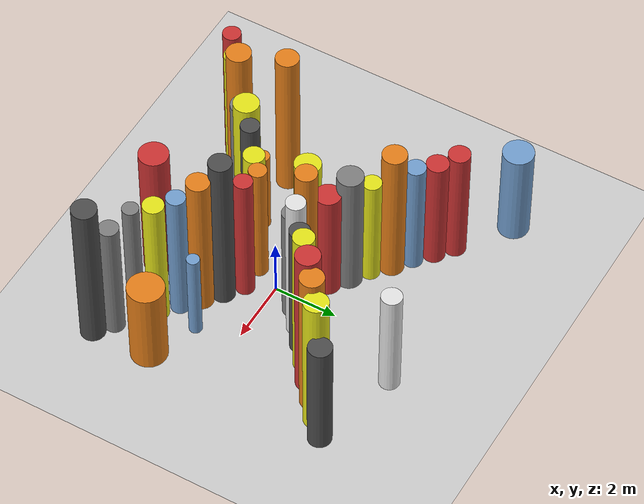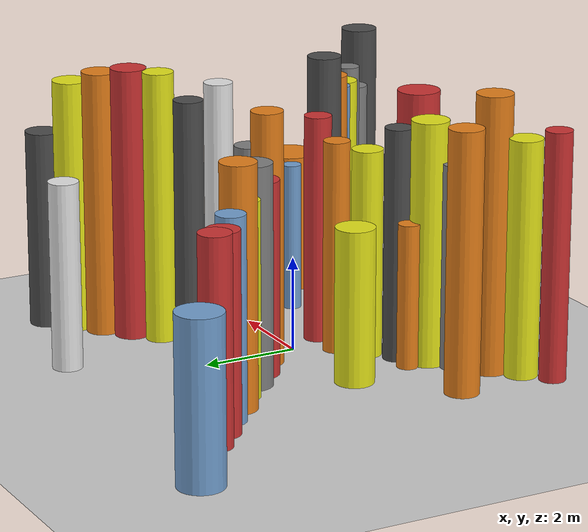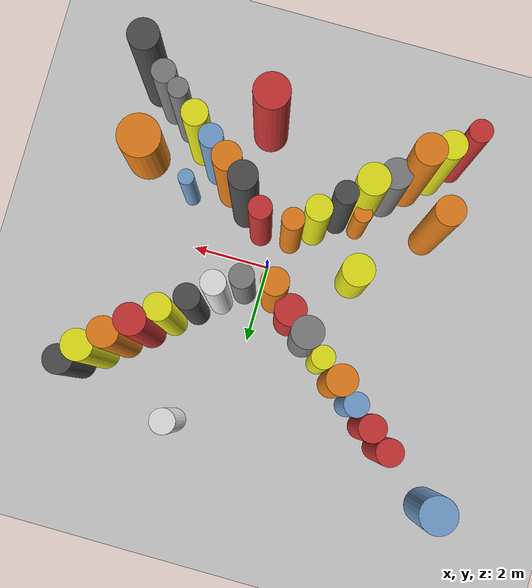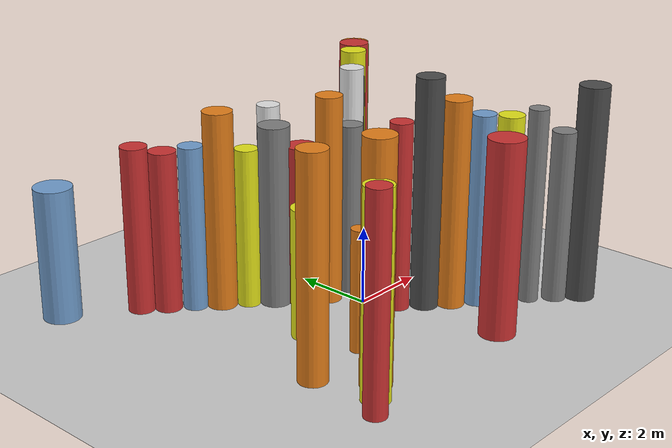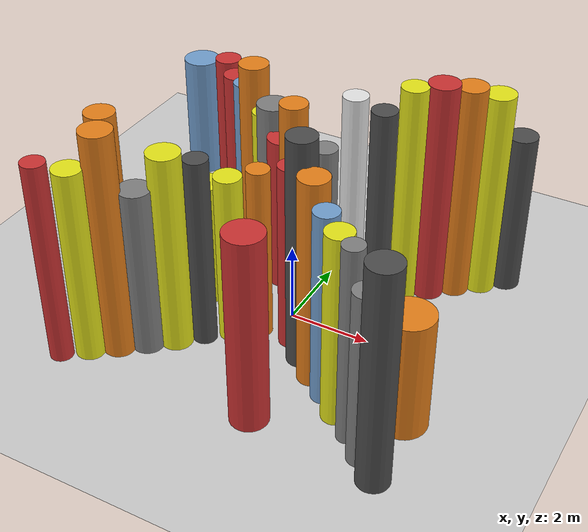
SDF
<?xml version='1.0'?>
<sdf version='1.6'>
  <world name='routeA_rl_v1__dense_recovery__rl_train__bottleneck_corridor__000062'>
    <!-- Sun light -->
    <light name='sun' type='directional'>
      <cast_shadows>1</cast_shadows>
      <pose>0 0 10 0 0 0</pose>
      <diffuse>0.8 0.8 0.8 1</diffuse>
      <specular>0.2 0.2 0.2 1</specular>
      <attenuation>
        <range>1000</range>
        <constant>0.9</constant>
        <linear>0.01</linear>
        <quadratic>0.001</quadratic>
      </attenuation>
      <direction>-0.5 0.1 -0.9</direction>
    </light>

    <!-- Ground plane -->
    <model name='ground_plane'>
      <static>1</static>
      <link name='link'>
        <collision name='collision'>
          <geometry>
            <plane>
              <normal>0 0 1</normal>
              <size>100 100</size>
            </plane>
          </geometry>
          <surface>
            <contact>
              <collide_bitmask>65535</collide_bitmask>
              <ode/>
            </contact>
            <friction>
              <ode>
                <mu>100</mu>
                <mu2>50</mu2>
              </ode>
              <torsional><ode/></torsional>
            </friction>
            <bounce/>
          </surface>
          <max_contacts>10</max_contacts>
        </collision>
        <visual name='visual'>
          <cast_shadows>0</cast_shadows>
          <geometry>
            <plane>
              <normal>0 0 1</normal>
              <size>100 100</size>
            </plane>
          </geometry>
          <material>
            <script>
              <uri>file://media/materials/scripts/gazebo.material</uri>
              <n>Gazebo/Grey</n>
            </script>
          </material>
        </visual>
      </link>
    </model>

    <!-- Environment -->
    <magnetic_field>6e-06 2.3e-05 -4.2e-05</magnetic_field>
    <atmosphere type='adiabatic'/>
    <physics name='default_physics' default='0' type='ode'>
      <gravity>0 0 -9.8</gravity>
      <max_step_size>0.004</max_step_size>
      <real_time_factor>1</real_time_factor>
      <real_time_update_rate>250</real_time_update_rate>
    </physics>
    <scene>
      <ambient>0.4 0.4 0.4 1</ambient>
      <background>0.7 0.7 0.7 1</background>
      <shadows>1</shadows>
    </scene>
    <wind/>
    <spherical_coordinates>
      <surface_model>EARTH_WGS84</surface_model>
      <latitude_deg>0</latitude_deg>
      <longitude_deg>0</longitude_deg>
      <elevation>0</elevation>
      <heading_deg>0</heading_deg>
    </spherical_coordinates>

    <!-- ============ OBSTACLES (40) ============ -->
    <model name='funnel_l_0'>
      <static>1</static>
      <link name='link'>
        <visual name='visual'>
          <geometry>
            <cylinder>
              <radius>0.2798</radius>
              <length>5.2288</length>
            </cylinder>
          </geometry>
          <material>
            <script>
              <n>Gazebo/Red</n>
              <uri>file://media/materials/scripts/gazebo.material</uri>
            </script>
            <ambient>0.8 0.2 0.2 1</ambient>
          </material>
        </visual>
        <collision name='collision'>
          <geometry>
            <cylinder>
              <radius>0.2798</radius>
              <length>5.2288</length>
            </cylinder>
          </geometry>
          <max_contacts>10</max_contacts>
          <surface>
            <contact><ode/></contact>
            <bounce/>
            <friction>
              <ode><mu>1</mu><mu2>1</mu2></ode>
              <torsional><ode/></torsional>
            </friction>
          </surface>
        </collision>
      </link>
      <pose>-4.0000 -3.8000 2.6144 0 0 0.0000</pose>
    </model>

    <model name='funnel_r_0'>
      <static>1</static>
      <link name='link'>
        <visual name='visual'>
          <geometry>
            <cylinder>
              <radius>0.3357</radius>
              <length>4.2747</length>
            </cylinder>
          </geometry>
          <material>
            <script>
              <n>Gazebo/Red</n>
              <uri>file://media/materials/scripts/gazebo.material</uri>
            </script>
            <ambient>0.8 0.2 0.2 1</ambient>
          </material>
        </visual>
        <collision name='collision'>
          <geometry>
            <cylinder>
              <radius>0.3357</radius>
              <length>4.2747</length>
            </cylinder>
          </geometry>
          <max_contacts>10</max_contacts>
          <surface>
            <contact><ode/></contact>
            <bounce/>
            <friction>
              <ode><mu>1</mu><mu2>1</mu2></ode>
              <torsional><ode/></torsional>
            </friction>
          </surface>
        </collision>
      </link>
      <pose>-4.0000 3.8000 2.1373 0 0 0.0000</pose>
    </model>

    <model name='funnel_l_1'>
      <static>1</static>
      <link name='link'>
        <visual name='visual'>
          <geometry>
            <cylinder>
              <radius>0.3500</radius>
              <length>4.9957</length>
            </cylinder>
          </geometry>
          <material>
            <script>
              <n>Gazebo/Yellow</n>
              <uri>file://media/materials/scripts/gazebo.material</uri>
            </script>
            <ambient>0.9 0.9 0.1 1</ambient>
          </material>
        </visual>
        <collision name='collision'>
          <geometry>
            <cylinder>
              <radius>0.3500</radius>
              <length>4.9957</length>
            </cylinder>
          </geometry>
          <max_contacts>10</max_contacts>
          <surface>
            <contact><ode/></contact>
            <bounce/>
            <friction>
              <ode><mu>1</mu><mu2>1</mu2></ode>
              <torsional><ode/></torsional>
            </friction>
          </surface>
        </collision>
      </link>
      <pose>-3.4857 -3.3714 2.4978 0 0 0.0000</pose>
    </model>

    <model name='funnel_r_1'>
      <static>1</static>
      <link name='link'>
        <visual name='visual'>
          <geometry>
            <cylinder>
              <radius>0.3436</radius>
              <length>4.1291</length>
            </cylinder>
          </geometry>
          <material>
            <script>
              <n>Gazebo/Red</n>
              <uri>file://media/materials/scripts/gazebo.material</uri>
            </script>
            <ambient>0.8 0.2 0.2 1</ambient>
          </material>
        </visual>
        <collision name='collision'>
          <geometry>
            <cylinder>
              <radius>0.3436</radius>
              <length>4.1291</length>
            </cylinder>
          </geometry>
          <max_contacts>10</max_contacts>
          <surface>
            <contact><ode/></contact>
            <bounce/>
            <friction>
              <ode><mu>1</mu><mu2>1</mu2></ode>
              <torsional><ode/></torsional>
            </friction>
          </surface>
        </collision>
      </link>
      <pose>-3.4857 3.3714 2.0645 0 0 0.0000</pose>
    </model>

    <model name='funnel_l_2'>
      <static>1</static>
      <link name='link'>
        <visual name='visual'>
          <geometry>
            <cylinder>
              <radius>0.3810</radius>
              <length>5.8471</length>
            </cylinder>
          </geometry>
          <material>
            <script>
              <n>Gazebo/Orange</n>
              <uri>file://media/materials/scripts/gazebo.material</uri>
            </script>
            <ambient>0.9 0.5 0.1 1</ambient>
          </material>
        </visual>
        <collision name='collision'>
          <geometry>
            <cylinder>
              <radius>0.3810</radius>
              <length>5.8471</length>
            </cylinder>
          </geometry>
          <max_contacts>10</max_contacts>
          <surface>
            <contact><ode/></contact>
            <bounce/>
            <friction>
              <ode><mu>1</mu><mu2>1</mu2></ode>
              <torsional><ode/></torsional>
            </friction>
          </surface>
        </collision>
      </link>
      <pose>-2.9714 -2.9429 2.9236 0 0 0.0000</pose>
    </model>

    <model name='funnel_r_2'>
      <static>1</static>
      <link name='link'>
        <visual name='visual'>
          <geometry>
            <cylinder>
              <radius>0.3063</radius>
              <length>4.2278</length>
            </cylinder>
          </geometry>
          <material>
            <script>
              <n>Gazebo/Blue</n>
              <uri>file://media/materials/scripts/gazebo.material</uri>
            </script>
            <ambient>0.447 0.624 0.812 1</ambient>
          </material>
        </visual>
        <collision name='collision'>
          <geometry>
            <cylinder>
              <radius>0.3063</radius>
              <length>4.2278</length>
            </cylinder>
          </geometry>
          <max_contacts>10</max_contacts>
          <surface>
            <contact><ode/></contact>
            <bounce/>
            <friction>
              <ode><mu>1</mu><mu2>1</mu2></ode>
              <torsional><ode/></torsional>
            </friction>
          </surface>
        </collision>
      </link>
      <pose>-2.9714 2.9429 2.1139 0 0 0.0000</pose>
    </model>

    <model name='funnel_l_3'>
      <static>1</static>
      <link name='link'>
        <visual name='visual'>
          <geometry>
            <cylinder>
              <radius>0.3849</radius>
              <length>4.3260</length>
            </cylinder>
          </geometry>
          <material>
            <script>
              <n>Gazebo/Grey</n>
              <uri>file://media/materials/scripts/gazebo.material</uri>
            </script>
            <ambient>0.5 0.5 0.5 1</ambient>
          </material>
        </visual>
        <collision name='collision'>
          <geometry>
            <cylinder>
              <radius>0.3849</radius>
              <length>4.3260</length>
            </cylinder>
          </geometry>
          <max_contacts>10</max_contacts>
          <surface>
            <contact><ode/></contact>
            <bounce/>
            <friction>
              <ode><mu>1</mu><mu2>1</mu2></ode>
              <torsional><ode/></torsional>
            </friction>
          </surface>
        </collision>
      </link>
      <pose>-2.4571 -2.5143 2.1630 0 0 0.0000</pose>
    </model>

    <model name='funnel_r_3'>
      <static>1</static>
      <link name='link'>
        <visual name='visual'>
          <geometry>
            <cylinder>
              <radius>0.3767</radius>
              <length>5.0670</length>
            </cylinder>
          </geometry>
          <material>
            <script>
              <n>Gazebo/Orange</n>
              <uri>file://media/materials/scripts/gazebo.material</uri>
            </script>
            <ambient>0.9 0.5 0.1 1</ambient>
          </material>
        </visual>
        <collision name='collision'>
          <geometry>
            <cylinder>
              <radius>0.3767</radius>
              <length>5.0670</length>
            </cylinder>
          </geometry>
          <max_contacts>10</max_contacts>
          <surface>
            <contact><ode/></contact>
            <bounce/>
            <friction>
              <ode><mu>1</mu><mu2>1</mu2></ode>
              <torsional><ode/></torsional>
            </friction>
          </surface>
        </collision>
      </link>
      <pose>-2.4571 2.5143 2.5335 0 0 0.0000</pose>
    </model>

    <model name='funnel_l_4'>
      <static>1</static>
      <link name='link'>
        <visual name='visual'>
          <geometry>
            <cylinder>
              <radius>0.3918</radius>
              <length>5.1613</length>
            </cylinder>
          </geometry>
          <material>
            <script>
              <n>Gazebo/Yellow</n>
              <uri>file://media/materials/scripts/gazebo.material</uri>
            </script>
            <ambient>0.9 0.9 0.1 1</ambient>
          </material>
        </visual>
        <collision name='collision'>
          <geometry>
            <cylinder>
              <radius>0.3918</radius>
              <length>5.1613</length>
            </cylinder>
          </geometry>
          <max_contacts>10</max_contacts>
          <surface>
            <contact><ode/></contact>
            <bounce/>
            <friction>
              <ode><mu>1</mu><mu2>1</mu2></ode>
              <torsional><ode/></torsional>
            </friction>
          </surface>
        </collision>
      </link>
      <pose>-1.9429 -2.0857 2.5807 0 0 0.0000</pose>
    </model>

    <model name='funnel_r_4'>
      <static>1</static>
      <link name='link'>
        <visual name='visual'>
          <geometry>
            <cylinder>
              <radius>0.2908</radius>
              <length>4.1005</length>
            </cylinder>
          </geometry>
          <material>
            <script>
              <n>Gazebo/Yellow</n>
              <uri>file://media/materials/scripts/gazebo.material</uri>
            </script>
            <ambient>0.9 0.9 0.1 1</ambient>
          </material>
        </visual>
        <collision name='collision'>
          <geometry>
            <cylinder>
              <radius>0.2908</radius>
              <length>4.1005</length>
            </cylinder>
          </geometry>
          <max_contacts>10</max_contacts>
          <surface>
            <contact><ode/></contact>
            <bounce/>
            <friction>
              <ode><mu>1</mu><mu2>1</mu2></ode>
              <torsional><ode/></torsional>
            </friction>
          </surface>
        </collision>
      </link>
      <pose>-1.9429 2.0857 2.0503 0 0 0.0000</pose>
    </model>

    <model name='funnel_l_5'>
      <static>1</static>
      <link name='link'>
        <visual name='visual'>
          <geometry>
            <cylinder>
              <radius>0.2907</radius>
              <length>4.9320</length>
            </cylinder>
          </geometry>
          <material>
            <script>
              <n>Gazebo/DarkGrey</n>
              <uri>file://media/materials/scripts/gazebo.material</uri>
            </script>
            <ambient>0.3 0.3 0.3 1</ambient>
          </material>
        </visual>
        <collision name='collision'>
          <geometry>
            <cylinder>
              <radius>0.2907</radius>
              <length>4.9320</length>
            </cylinder>
          </geometry>
          <max_contacts>10</max_contacts>
          <surface>
            <contact><ode/></contact>
            <bounce/>
            <friction>
              <ode><mu>1</mu><mu2>1</mu2></ode>
              <torsional><ode/></torsional>
            </friction>
          </surface>
        </collision>
      </link>
      <pose>-1.4286 -1.6571 2.4660 0 0 0.0000</pose>
    </model>

    <model name='funnel_r_5'>
      <static>1</static>
      <link name='link'>
        <visual name='visual'>
          <geometry>
            <cylinder>
              <radius>0.3987</radius>
              <length>4.6594</length>
            </cylinder>
          </geometry>
          <material>
            <script>
              <n>Gazebo/Grey</n>
              <uri>file://media/materials/scripts/gazebo.material</uri>
            </script>
            <ambient>0.5 0.5 0.5 1</ambient>
          </material>
        </visual>
        <collision name='collision'>
          <geometry>
            <cylinder>
              <radius>0.3987</radius>
              <length>4.6594</length>
            </cylinder>
          </geometry>
          <max_contacts>10</max_contacts>
          <surface>
            <contact><ode/></contact>
            <bounce/>
            <friction>
              <ode><mu>1</mu><mu2>1</mu2></ode>
              <torsional><ode/></torsional>
            </friction>
          </surface>
        </collision>
      </link>
      <pose>-1.4286 1.6571 2.3297 0 0 0.0000</pose>
    </model>

    <model name='funnel_l_6'>
      <static>1</static>
      <link name='link'>
        <visual name='visual'>
          <geometry>
            <cylinder>
              <radius>0.3271</radius>
              <length>4.4102</length>
            </cylinder>
          </geometry>
          <material>
            <script>
              <n>Gazebo/Yellow</n>
              <uri>file://media/materials/scripts/gazebo.material</uri>
            </script>
            <ambient>0.9 0.9 0.1 1</ambient>
          </material>
        </visual>
        <collision name='collision'>
          <geometry>
            <cylinder>
              <radius>0.3271</radius>
              <length>4.4102</length>
            </cylinder>
          </geometry>
          <max_contacts>10</max_contacts>
          <surface>
            <contact><ode/></contact>
            <bounce/>
            <friction>
              <ode><mu>1</mu><mu2>1</mu2></ode>
              <torsional><ode/></torsional>
            </friction>
          </surface>
        </collision>
      </link>
      <pose>-0.9143 -1.2286 2.2051 0 0 0.0000</pose>
    </model>

    <model name='funnel_r_6'>
      <static>1</static>
      <link name='link'>
        <visual name='visual'>
          <geometry>
            <cylinder>
              <radius>0.3929</radius>
              <length>4.1151</length>
            </cylinder>
          </geometry>
          <material>
            <script>
              <n>Gazebo/Red</n>
              <uri>file://media/materials/scripts/gazebo.material</uri>
            </script>
            <ambient>0.8 0.2 0.2 1</ambient>
          </material>
        </visual>
        <collision name='collision'>
          <geometry>
            <cylinder>
              <radius>0.3929</radius>
              <length>4.1151</length>
            </cylinder>
          </geometry>
          <max_contacts>10</max_contacts>
          <surface>
            <contact><ode/></contact>
            <bounce/>
            <friction>
              <ode><mu>1</mu><mu2>1</mu2></ode>
              <torsional><ode/></torsional>
            </friction>
          </surface>
        </collision>
      </link>
      <pose>-0.9143 1.2286 2.0575 0 0 0.0000</pose>
    </model>

    <model name='funnel_l_7'>
      <static>1</static>
      <link name='link'>
        <visual name='visual'>
          <geometry>
            <cylinder>
              <radius>0.2762</radius>
              <length>4.5132</length>
            </cylinder>
          </geometry>
          <material>
            <script>
              <n>Gazebo/Orange</n>
              <uri>file://media/materials/scripts/gazebo.material</uri>
            </script>
            <ambient>0.9 0.5 0.1 1</ambient>
          </material>
        </visual>
        <collision name='collision'>
          <geometry>
            <cylinder>
              <radius>0.2762</radius>
              <length>4.5132</length>
            </cylinder>
          </geometry>
          <max_contacts>10</max_contacts>
          <surface>
            <contact><ode/></contact>
            <bounce/>
            <friction>
              <ode><mu>1</mu><mu2>1</mu2></ode>
              <torsional><ode/></torsional>
            </friction>
          </surface>
        </collision>
      </link>
      <pose>-0.4000 -0.8000 2.2566 0 0 0.0000</pose>
    </model>

    <model name='funnel_r_7'>
      <static>1</static>
      <link name='link'>
        <visual name='visual'>
          <geometry>
            <cylinder>
              <radius>0.3357</radius>
              <length>5.3493</length>
            </cylinder>
          </geometry>
          <material>
            <script>
              <n>Gazebo/Orange</n>
              <uri>file://media/materials/scripts/gazebo.material</uri>
            </script>
            <ambient>0.9 0.5 0.1 1</ambient>
          </material>
        </visual>
        <collision name='collision'>
          <geometry>
            <cylinder>
              <radius>0.3357</radius>
              <length>5.3493</length>
            </cylinder>
          </geometry>
          <max_contacts>10</max_contacts>
          <surface>
            <contact><ode/></contact>
            <bounce/>
            <friction>
              <ode><mu>1</mu><mu2>1</mu2></ode>
              <torsional><ode/></torsional>
            </friction>
          </surface>
        </collision>
      </link>
      <pose>-0.4000 0.8000 2.6746 0 0 0.0000</pose>
    </model>

    <model name='funnel_out_l_0'>
      <static>1</static>
      <link name='link'>
        <visual name='visual'>
          <geometry>
            <cylinder>
              <radius>0.2874</radius>
              <length>4.8460</length>
            </cylinder>
          </geometry>
          <material>
            <script>
              <n>Gazebo/Red</n>
              <uri>file://media/materials/scripts/gazebo.material</uri>
            </script>
            <ambient>0.8 0.2 0.2 1</ambient>
          </material>
        </visual>
        <collision name='collision'>
          <geometry>
            <cylinder>
              <radius>0.2874</radius>
              <length>4.8460</length>
            </cylinder>
          </geometry>
          <max_contacts>10</max_contacts>
          <surface>
            <contact><ode/></contact>
            <bounce/>
            <friction>
              <ode><mu>1</mu><mu2>1</mu2></ode>
              <torsional><ode/></torsional>
            </friction>
          </surface>
        </collision>
      </link>
      <pose>0.4000 -0.8000 2.4230 0 0 0.0000</pose>
    </model>

    <model name='funnel_out_r_0'>
      <static>1</static>
      <link name='link'>
        <visual name='visual'>
          <geometry>
            <cylinder>
              <radius>0.3054</radius>
              <length>4.4293</length>
            </cylinder>
          </geometry>
          <material>
            <script>
              <n>Gazebo/Grey</n>
              <uri>file://media/materials/scripts/gazebo.material</uri>
            </script>
            <ambient>0.5 0.5 0.5 1</ambient>
          </material>
        </visual>
        <collision name='collision'>
          <geometry>
            <cylinder>
              <radius>0.3054</radius>
              <length>4.4293</length>
            </cylinder>
          </geometry>
          <max_contacts>10</max_contacts>
          <surface>
            <contact><ode/></contact>
            <bounce/>
            <friction>
              <ode><mu>1</mu><mu2>1</mu2></ode>
              <torsional><ode/></torsional>
            </friction>
          </surface>
        </collision>
      </link>
      <pose>0.4000 0.8000 2.2147 0 0 0.0000</pose>
    </model>

    <model name='funnel_out_l_1'>
      <static>1</static>
      <link name='link'>
        <visual name='visual'>
          <geometry>
            <cylinder>
              <radius>0.3516</radius>
              <length>5.9338</length>
            </cylinder>
          </geometry>
          <material>
            <script>
              <n>Gazebo/DarkGrey</n>
              <uri>file://media/materials/scripts/gazebo.material</uri>
            </script>
            <ambient>0.3 0.3 0.3 1</ambient>
          </material>
        </visual>
        <collision name='collision'>
          <geometry>
            <cylinder>
              <radius>0.3516</radius>
              <length>5.9338</length>
            </cylinder>
          </geometry>
          <max_contacts>10</max_contacts>
          <surface>
            <contact><ode/></contact>
            <bounce/>
            <friction>
              <ode><mu>1</mu><mu2>1</mu2></ode>
              <torsional><ode/></torsional>
            </friction>
          </surface>
        </collision>
      </link>
      <pose>0.9143 -1.2286 2.9669 0 0 0.0000</pose>
    </model>

    <model name='funnel_out_r_1'>
      <static>1</static>
      <link name='link'>
        <visual name='visual'>
          <geometry>
            <cylinder>
              <radius>0.2983</radius>
              <length>5.6827</length>
            </cylinder>
          </geometry>
          <material>
            <script>
              <n>Gazebo/White</n>
              <uri>file://media/materials/scripts/gazebo.material</uri>
            </script>
            <ambient>0.9 0.9 0.9 1</ambient>
          </material>
        </visual>
        <collision name='collision'>
          <geometry>
            <cylinder>
              <radius>0.2983</radius>
              <length>5.6827</length>
            </cylinder>
          </geometry>
          <max_contacts>10</max_contacts>
          <surface>
            <contact><ode/></contact>
            <bounce/>
            <friction>
              <ode><mu>1</mu><mu2>1</mu2></ode>
              <torsional><ode/></torsional>
            </friction>
          </surface>
        </collision>
      </link>
      <pose>0.9143 1.2286 2.8413 0 0 0.0000</pose>
    </model>

    <model name='funnel_out_l_2'>
      <static>1</static>
      <link name='link'>
        <visual name='visual'>
          <geometry>
            <cylinder>
              <radius>0.3563</radius>
              <length>5.3598</length>
            </cylinder>
          </geometry>
          <material>
            <script>
              <n>Gazebo/Orange</n>
              <uri>file://media/materials/scripts/gazebo.material</uri>
            </script>
            <ambient>0.9 0.5 0.1 1</ambient>
          </material>
        </visual>
        <collision name='collision'>
          <geometry>
            <cylinder>
              <radius>0.3563</radius>
              <length>5.3598</length>
            </cylinder>
          </geometry>
          <max_contacts>10</max_contacts>
          <surface>
            <contact><ode/></contact>
            <bounce/>
            <friction>
              <ode><mu>1</mu><mu2>1</mu2></ode>
              <torsional><ode/></torsional>
            </friction>
          </surface>
        </collision>
      </link>
      <pose>1.4286 -1.6571 2.6799 0 0 0.0000</pose>
    </model>

    <model name='funnel_out_r_2'>
      <static>1</static>
      <link name='link'>
        <visual name='visual'>
          <geometry>
            <cylinder>
              <radius>0.3121</radius>
              <length>5.2444</length>
            </cylinder>
          </geometry>
          <material>
            <script>
              <n>Gazebo/DarkGrey</n>
              <uri>file://media/materials/scripts/gazebo.material</uri>
            </script>
            <ambient>0.3 0.3 0.3 1</ambient>
          </material>
        </visual>
        <collision name='collision'>
          <geometry>
            <cylinder>
              <radius>0.3121</radius>
              <length>5.2444</length>
            </cylinder>
          </geometry>
          <max_contacts>10</max_contacts>
          <surface>
            <contact><ode/></contact>
            <bounce/>
            <friction>
              <ode><mu>1</mu><mu2>1</mu2></ode>
              <torsional><ode/></torsional>
            </friction>
          </surface>
        </collision>
      </link>
      <pose>1.4286 1.6571 2.6222 0 0 0.0000</pose>
    </model>

    <model name='funnel_out_l_3'>
      <static>1</static>
      <link name='link'>
        <visual name='visual'>
          <geometry>
            <cylinder>
              <radius>0.2953</radius>
              <length>4.9542</length>
            </cylinder>
          </geometry>
          <material>
            <script>
              <n>Gazebo/Blue</n>
              <uri>file://media/materials/scripts/gazebo.material</uri>
            </script>
            <ambient>0.447 0.624 0.812 1</ambient>
          </material>
        </visual>
        <collision name='collision'>
          <geometry>
            <cylinder>
              <radius>0.2953</radius>
              <length>4.9542</length>
            </cylinder>
          </geometry>
          <max_contacts>10</max_contacts>
          <surface>
            <contact><ode/></contact>
            <bounce/>
            <friction>
              <ode><mu>1</mu><mu2>1</mu2></ode>
              <torsional><ode/></torsional>
            </friction>
          </surface>
        </collision>
      </link>
      <pose>1.9429 -2.0857 2.4771 0 0 0.0000</pose>
    </model>

    <model name='funnel_out_r_3'>
      <static>1</static>
      <link name='link'>
        <visual name='visual'>
          <geometry>
            <cylinder>
              <radius>0.3253</radius>
              <length>5.7741</length>
            </cylinder>
          </geometry>
          <material>
            <script>
              <n>Gazebo/Yellow</n>
              <uri>file://media/materials/scripts/gazebo.material</uri>
            </script>
            <ambient>0.9 0.9 0.1 1</ambient>
          </material>
        </visual>
        <collision name='collision'>
          <geometry>
            <cylinder>
              <radius>0.3253</radius>
              <length>5.7741</length>
            </cylinder>
          </geometry>
          <max_contacts>10</max_contacts>
          <surface>
            <contact><ode/></contact>
            <bounce/>
            <friction>
              <ode><mu>1</mu><mu2>1</mu2></ode>
              <torsional><ode/></torsional>
            </friction>
          </surface>
        </collision>
      </link>
      <pose>1.9429 2.0857 2.8871 0 0 0.0000</pose>
    </model>

    <model name='funnel_out_l_4'>
      <static>1</static>
      <link name='link'>
        <visual name='visual'>
          <geometry>
            <cylinder>
              <radius>0.3244</radius>
              <length>4.8987</length>
            </cylinder>
          </geometry>
          <material>
            <script>
              <n>Gazebo/Yellow</n>
              <uri>file://media/materials/scripts/gazebo.material</uri>
            </script>
            <ambient>0.9 0.9 0.1 1</ambient>
          </material>
        </visual>
        <collision name='collision'>
          <geometry>
            <cylinder>
              <radius>0.3244</radius>
              <length>4.8987</length>
            </cylinder>
          </geometry>
          <max_contacts>10</max_contacts>
          <surface>
            <contact><ode/></contact>
            <bounce/>
            <friction>
              <ode><mu>1</mu><mu2>1</mu2></ode>
              <torsional><ode/></torsional>
            </friction>
          </surface>
        </collision>
      </link>
      <pose>2.4571 -2.5143 2.4493 0 0 0.0000</pose>
    </model>

    <model name='funnel_out_r_4'>
      <static>1</static>
      <link name='link'>
        <visual name='visual'>
          <geometry>
            <cylinder>
              <radius>0.3760</radius>
              <length>5.7917</length>
            </cylinder>
          </geometry>
          <material>
            <script>
              <n>Gazebo/Red</n>
              <uri>file://media/materials/scripts/gazebo.material</uri>
            </script>
            <ambient>0.8 0.2 0.2 1</ambient>
          </material>
        </visual>
        <collision name='collision'>
          <geometry>
            <cylinder>
              <radius>0.3760</radius>
              <length>5.7917</length>
            </cylinder>
          </geometry>
          <max_contacts>10</max_contacts>
          <surface>
            <contact><ode/></contact>
            <bounce/>
            <friction>
              <ode><mu>1</mu><mu2>1</mu2></ode>
              <torsional><ode/></torsional>
            </friction>
          </surface>
        </collision>
      </link>
      <pose>2.4571 2.5143 2.8958 0 0 0.0000</pose>
    </model>

    <model name='funnel_out_l_5'>
      <static>1</static>
      <link name='link'>
        <visual name='visual'>
          <geometry>
            <cylinder>
              <radius>0.2509</radius>
              <length>5.0341</length>
            </cylinder>
          </geometry>
          <material>
            <script>
              <n>Gazebo/Grey</n>
              <uri>file://media/materials/scripts/gazebo.material</uri>
            </script>
            <ambient>0.5 0.5 0.5 1</ambient>
          </material>
        </visual>
        <collision name='collision'>
          <geometry>
            <cylinder>
              <radius>0.2509</radius>
              <length>5.0341</length>
            </cylinder>
          </geometry>
          <max_contacts>10</max_contacts>
          <surface>
            <contact><ode/></contact>
            <bounce/>
            <friction>
              <ode><mu>1</mu><mu2>1</mu2></ode>
              <torsional><ode/></torsional>
            </friction>
          </surface>
        </collision>
      </link>
      <pose>2.9714 -2.9429 2.5170 0 0 0.0000</pose>
    </model>

    <model name='funnel_out_r_5'>
      <static>1</static>
      <link name='link'>
        <visual name='visual'>
          <geometry>
            <cylinder>
              <radius>0.3650</radius>
              <length>5.6490</length>
            </cylinder>
          </geometry>
          <material>
            <script>
              <n>Gazebo/Orange</n>
              <uri>file://media/materials/scripts/gazebo.material</uri>
            </script>
            <ambient>0.9 0.5 0.1 1</ambient>
          </material>
        </visual>
        <collision name='collision'>
          <geometry>
            <cylinder>
              <radius>0.3650</radius>
              <length>5.6490</length>
            </cylinder>
          </geometry>
          <max_contacts>10</max_contacts>
          <surface>
            <contact><ode/></contact>
            <bounce/>
            <friction>
              <ode><mu>1</mu><mu2>1</mu2></ode>
              <torsional><ode/></torsional>
            </friction>
          </surface>
        </collision>
      </link>
      <pose>2.9714 2.9429 2.8245 0 0 0.0000</pose>
    </model>

    <model name='funnel_out_l_6'>
      <static>1</static>
      <link name='link'>
        <visual name='visual'>
          <geometry>
            <cylinder>
              <radius>0.3036</radius>
              <length>4.4390</length>
            </cylinder>
          </geometry>
          <material>
            <script>
              <n>Gazebo/Grey</n>
              <uri>file://media/materials/scripts/gazebo.material</uri>
            </script>
            <ambient>0.5 0.5 0.5 1</ambient>
          </material>
        </visual>
        <collision name='collision'>
          <geometry>
            <cylinder>
              <radius>0.3036</radius>
              <length>4.4390</length>
            </cylinder>
          </geometry>
          <max_contacts>10</max_contacts>
          <surface>
            <contact><ode/></contact>
            <bounce/>
            <friction>
              <ode><mu>1</mu><mu2>1</mu2></ode>
              <torsional><ode/></torsional>
            </friction>
          </surface>
        </collision>
      </link>
      <pose>3.4857 -3.3714 2.2195 0 0 0.0000</pose>
    </model>

    <model name='funnel_out_r_6'>
      <static>1</static>
      <link name='link'>
        <visual name='visual'>
          <geometry>
            <cylinder>
              <radius>0.3749</radius>
              <length>5.3967</length>
            </cylinder>
          </geometry>
          <material>
            <script>
              <n>Gazebo/Yellow</n>
              <uri>file://media/materials/scripts/gazebo.material</uri>
            </script>
            <ambient>0.9 0.9 0.1 1</ambient>
          </material>
        </visual>
        <collision name='collision'>
          <geometry>
            <cylinder>
              <radius>0.3749</radius>
              <length>5.3967</length>
            </cylinder>
          </geometry>
          <max_contacts>10</max_contacts>
          <surface>
            <contact><ode/></contact>
            <bounce/>
            <friction>
              <ode><mu>1</mu><mu2>1</mu2></ode>
              <torsional><ode/></torsional>
            </friction>
          </surface>
        </collision>
      </link>
      <pose>3.4857 3.3714 2.6983 0 0 0.0000</pose>
    </model>

    <model name='funnel_out_l_7'>
      <static>1</static>
      <link name='link'>
        <visual name='visual'>
          <geometry>
            <cylinder>
              <radius>0.3830</radius>
              <length>5.5587</length>
            </cylinder>
          </geometry>
          <material>
            <script>
              <n>Gazebo/DarkGrey</n>
              <uri>file://media/materials/scripts/gazebo.material</uri>
            </script>
            <ambient>0.3 0.3 0.3 1</ambient>
          </material>
        </visual>
        <collision name='collision'>
          <geometry>
            <cylinder>
              <radius>0.3830</radius>
              <length>5.5587</length>
            </cylinder>
          </geometry>
          <max_contacts>10</max_contacts>
          <surface>
            <contact><ode/></contact>
            <bounce/>
            <friction>
              <ode><mu>1</mu><mu2>1</mu2></ode>
              <torsional><ode/></torsional>
            </friction>
          </surface>
        </collision>
      </link>
      <pose>4.0000 -3.8000 2.7794 0 0 0.0000</pose>
    </model>

    <model name='funnel_out_r_7'>
      <static>1</static>
      <link name='link'>
        <visual name='visual'>
          <geometry>
            <cylinder>
              <radius>0.3614</radius>
              <length>4.2324</length>
            </cylinder>
          </geometry>
          <material>
            <script>
              <n>Gazebo/DarkGrey</n>
              <uri>file://media/materials/scripts/gazebo.material</uri>
            </script>
            <ambient>0.3 0.3 0.3 1</ambient>
          </material>
        </visual>
        <collision name='collision'>
          <geometry>
            <cylinder>
              <radius>0.3614</radius>
              <length>4.2324</length>
            </cylinder>
          </geometry>
          <max_contacts>10</max_contacts>
          <surface>
            <contact><ode/></contact>
            <bounce/>
            <friction>
              <ode><mu>1</mu><mu2>1</mu2></ode>
              <torsional><ode/></torsional>
            </friction>
          </surface>
        </collision>
      </link>
      <pose>4.0000 3.8000 2.1162 0 0 0.0000</pose>
    </model>

    <model name='bn_scatter_0'>
      <static>1</static>
      <link name='link'>
        <visual name='visual'>
          <geometry>
            <cylinder>
              <radius>0.4129</radius>
              <length>3.2743</length>
            </cylinder>
          </geometry>
          <material>
            <script>
              <n>Gazebo/Yellow</n>
              <uri>file://media/materials/scripts/gazebo.material</uri>
            </script>
            <ambient>0.9 0.9 0.1 1</ambient>
          </material>
        </visual>
        <collision name='collision'>
          <geometry>
            <cylinder>
              <radius>0.4129</radius>
              <length>3.2743</length>
            </cylinder>
          </geometry>
          <max_contacts>10</max_contacts>
          <surface>
            <contact><ode/></contact>
            <bounce/>
            <friction>
              <ode><mu>1</mu><mu2>1</mu2></ode>
              <torsional><ode/></torsional>
            </friction>
          </surface>
        </collision>
      </link>
      <pose>-2.2293 -0.2109 1.6372 0 0 0.0000</pose>
    </model>

    <model name='bn_scatter_1'>
      <static>1</static>
      <link name='link'>
        <visual name='visual'>
          <geometry>
            <cylinder>
              <radius>0.2007</radius>
              <length>3.2046</length>
            </cylinder>
          </geometry>
          <material>
            <script>
              <n>Gazebo/Blue</n>
              <uri>file://media/materials/scripts/gazebo.material</uri>
            </script>
            <ambient>0.447 0.624 0.812 1</ambient>
          </material>
        </visual>
        <collision name='collision'>
          <geometry>
            <cylinder>
              <radius>0.2007</radius>
              <length>3.2046</length>
            </cylinder>
          </geometry>
          <max_contacts>10</max_contacts>
          <surface>
            <contact><ode/></contact>
            <bounce/>
            <friction>
              <ode><mu>1</mu><mu2>1</mu2></ode>
              <torsional><ode/></torsional>
            </friction>
          </surface>
        </collision>
      </link>
      <pose>2.4183 -1.2777 1.6023 0 0 0.0000</pose>
    </model>

    <model name='bn_scatter_2'>
      <static>1</static>
      <link name='link'>
        <visual name='visual'>
          <geometry>
            <cylinder>
              <radius>0.3613</radius>
              <length>5.4853</length>
            </cylinder>
          </geometry>
          <material>
            <script>
              <n>Gazebo/Orange</n>
              <uri>file://media/materials/scripts/gazebo.material</uri>
            </script>
            <ambient>0.9 0.5 0.1 1</ambient>
          </material>
        </visual>
        <collision name='collision'>
          <geometry>
            <cylinder>
              <radius>0.3613</radius>
              <length>5.4853</length>
            </cylinder>
          </geometry>
          <max_contacts>10</max_contacts>
          <surface>
            <contact><ode/></contact>
            <bounce/>
            <friction>
              <ode><mu>1</mu><mu2>1</mu2></ode>
              <torsional><ode/></torsional>
            </friction>
          </surface>
        </collision>
      </link>
      <pose>-3.7788 -1.7938 2.7426 0 0 0.0000</pose>
    </model>

    <model name='bn_scatter_3'>
      <static>1</static>
      <link name='link'>
        <visual name='visual'>
          <geometry>
            <cylinder>
              <radius>0.4793</radius>
              <length>3.4072</length>
            </cylinder>
          </geometry>
          <material>
            <script>
              <n>Gazebo/Blue</n>
              <uri>file://media/materials/scripts/gazebo.material</uri>
            </script>
            <ambient>0.447 0.624 0.812 1</ambient>
          </material>
        </visual>
        <collision name='collision'>
          <geometry>
            <cylinder>
              <radius>0.4793</radius>
              <length>3.4072</length>
            </cylinder>
          </geometry>
          <max_contacts>10</max_contacts>
          <surface>
            <contact><ode/></contact>
            <bounce/>
            <friction>
              <ode><mu>1</mu><mu2>1</mu2></ode>
              <torsional><ode/></torsional>
            </friction>
          </surface>
        </collision>
      </link>
      <pose>-5.5838 4.9183 1.7036 0 0 0.0000</pose>
    </model>

    <model name='bn_scatter_4'>
      <static>1</static>
      <link name='link'>
        <visual name='visual'>
          <geometry>
            <cylinder>
              <radius>0.2258</radius>
              <length>3.0637</length>
            </cylinder>
          </geometry>
          <material>
            <script>
              <n>Gazebo/Orange</n>
              <uri>file://media/materials/scripts/gazebo.material</uri>
            </script>
            <ambient>0.9 0.5 0.1 1</ambient>
          </material>
        </visual>
        <collision name='collision'>
          <geometry>
            <cylinder>
              <radius>0.2258</radius>
              <length>3.0637</length>
            </cylinder>
          </geometry>
          <max_contacts>10</max_contacts>
          <surface>
            <contact><ode/></contact>
            <bounce/>
            <friction>
              <ode><mu>1</mu><mu2>1</mu2></ode>
              <torsional><ode/></torsional>
            </friction>
          </surface>
        </collision>
      </link>
      <pose>-1.9790 -1.5950 1.5318 0 0 0.0000</pose>
    </model>

    <model name='bn_scatter_5'>
      <static>1</static>
      <link name='link'>
        <visual name='visual'>
          <geometry>
            <cylinder>
              <radius>0.5621</radius>
              <length>3.0183</length>
            </cylinder>
          </geometry>
          <material>
            <script>
              <n>Gazebo/Orange</n>
              <uri>file://media/materials/scripts/gazebo.material</uri>
            </script>
            <ambient>0.9 0.5 0.1 1</ambient>
          </material>
        </visual>
        <collision name='collision'>
          <geometry>
            <cylinder>
              <radius>0.5621</radius>
              <length>3.0183</length>
            </cylinder>
          </geometry>
          <max_contacts>10</max_contacts>
          <surface>
            <contact><ode/></contact>
            <bounce/>
            <friction>
              <ode><mu>1</mu><mu2>1</mu2></ode>
              <torsional><ode/></torsional>
            </friction>
          </surface>
        </collision>
      </link>
      <pose>3.8395 -1.9838 1.5091 0 0 0.0000</pose>
    </model>

    <model name='bn_scatter_6'>
      <static>1</static>
      <link name='link'>
        <visual name='visual'>
          <geometry>
            <cylinder>
              <radius>0.3173</radius>
              <length>3.9627</length>
            </cylinder>
          </geometry>
          <material>
            <script>
              <n>Gazebo/White</n>
              <uri>file://media/materials/scripts/gazebo.material</uri>
            </script>
            <ambient>0.9 0.9 0.9 1</ambient>
          </material>
        </visual>
        <collision name='collision'>
          <geometry>
            <cylinder>
              <radius>0.3173</radius>
              <length>3.9627</length>
            </cylinder>
          </geometry>
          <max_contacts>10</max_contacts>
          <surface>
            <contact><ode/></contact>
            <bounce/>
            <friction>
              <ode><mu>1</mu><mu2>1</mu2></ode>
              <torsional><ode/></torsional>
            </friction>
          </surface>
        </collision>
      </link>
      <pose>1.2767 4.5344 1.9813 0 0 0.0000</pose>
    </model>

    <model name='bn_scatter_7'>
      <static>1</static>
      <link name='link'>
        <visual name='visual'>
          <geometry>
            <cylinder>
              <radius>0.4546</radius>
              <length>4.9376</length>
            </cylinder>
          </geometry>
          <material>
            <script>
              <n>Gazebo/Red</n>
              <uri>file://media/materials/scripts/gazebo.material</uri>
            </script>
            <ambient>0.8 0.2 0.2 1</ambient>
          </material>
        </visual>
        <collision name='collision'>
          <geometry>
            <cylinder>
              <radius>0.4546</radius>
              <length>4.9376</length>
            </cylinder>
          </geometry>
          <max_contacts>10</max_contacts>
          <surface>
            <contact><ode/></contact>
            <bounce/>
            <friction>
              <ode><mu>1</mu><mu2>1</mu2></ode>
              <torsional><ode/></torsional>
            </friction>
          </surface>
        </collision>
      </link>
      <pose>0.8712 -3.4820 2.4688 0 0 0.0000</pose>
    </model>

    <!-- GUI camera -->
    <gui fullscreen='0'>
      <camera name='user_camera'>
        <pose>-15 0 18 0 0.85 0.15</pose>
        <view_controller>orbit</view_controller>
        <projection_type>perspective</projection_type>
      </camera>
    </gui>
  </world>
</sdf>
